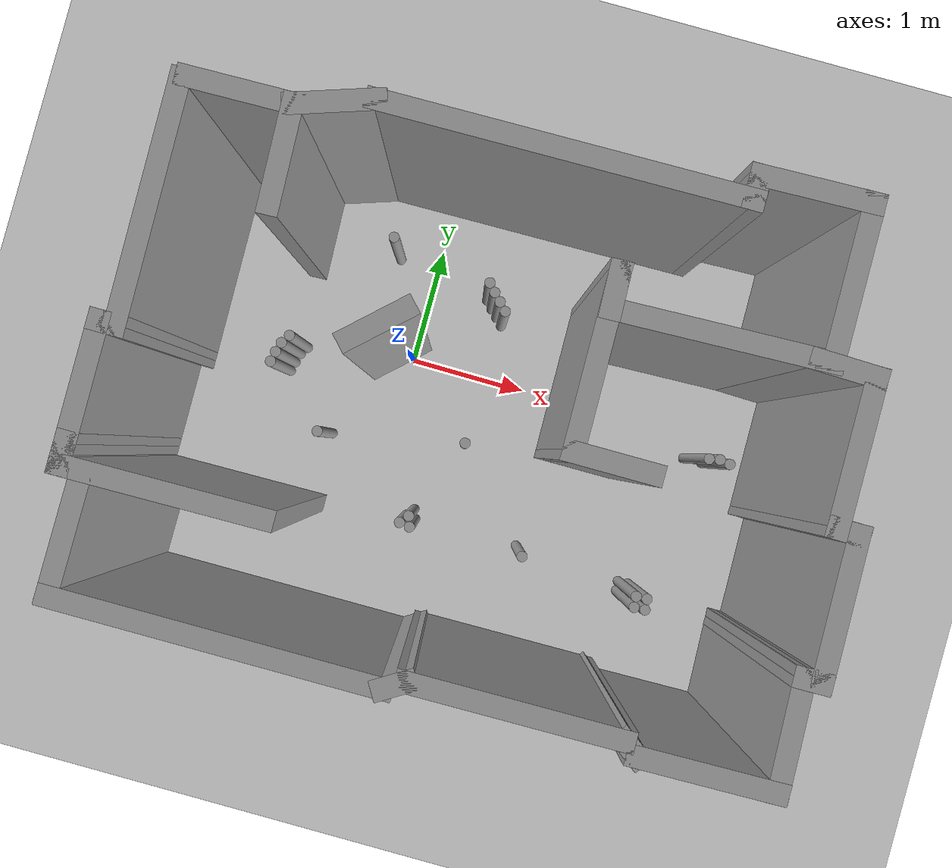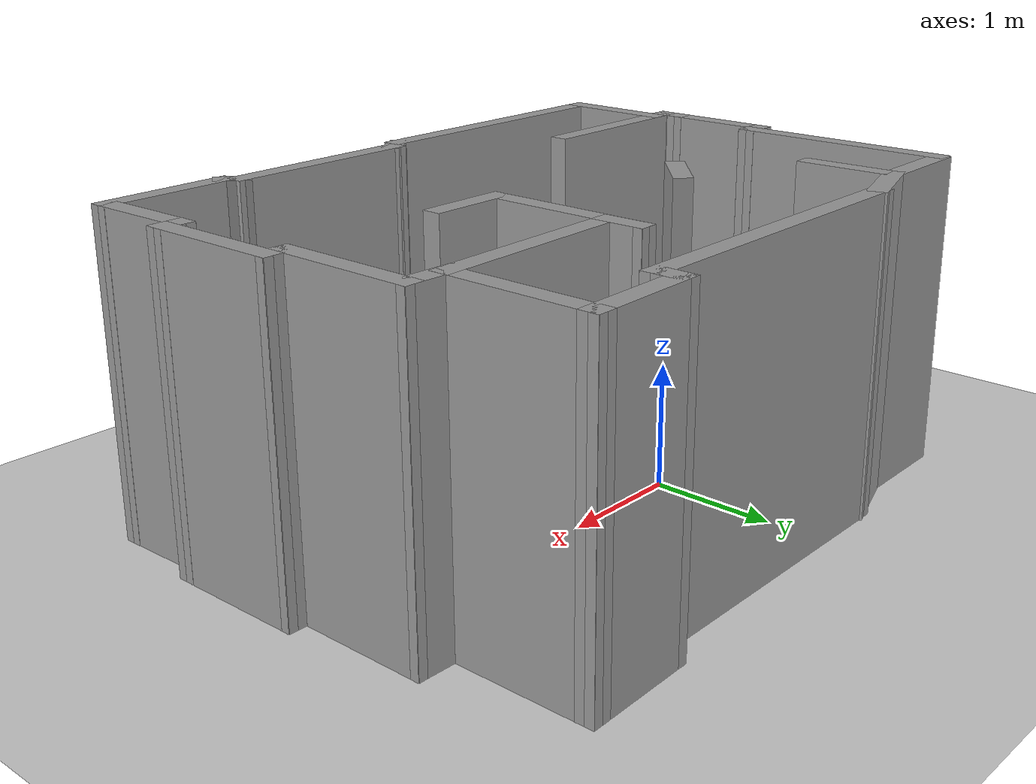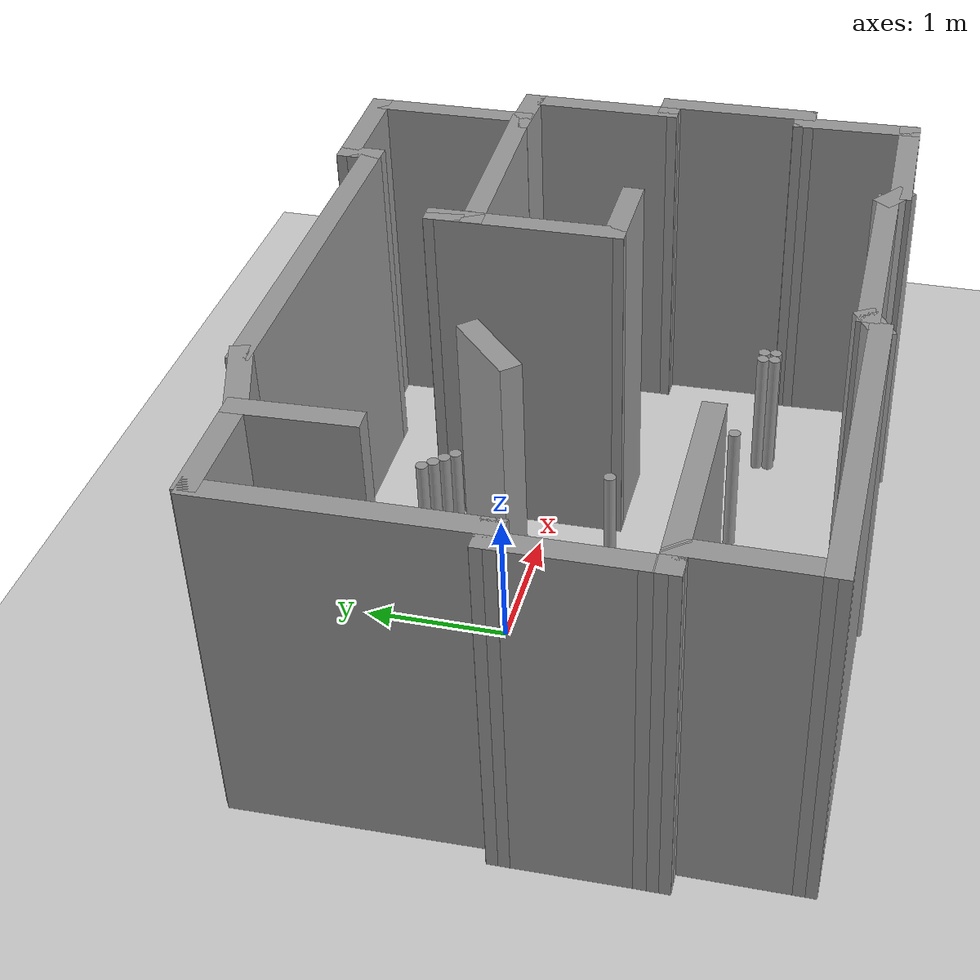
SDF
<sdf version="1.6">
 <world name="default">
  <light name="sun" type="directional">
   <pose>0 0 10 0 -0 0</pose>
   <diffuse>0.8 0.8 0.8 1</diffuse>
   <specular>0.2 0.2 0.2 1</specular>
   <attenuation>
    <range>1000</range>
    <constant>0.9</constant>
    <linear>0.01</linear>
    <quadratic>0.001</quadratic>
   </attenuation>
   <direction>-0.5 0.1 -0.9</direction>
  </light>
  <model name="ground_plane">
   <static>1</static>
   <link name="link">
    <collision name="collision">
     <geometry><plane><normal>0 0 1</normal><size>100 100</size></plane></geometry>
     <surface>
      <contact><collide_bitmask>65535</collide_bitmask></contact>
      <friction><ode><mu>100</mu><mu2>50</mu2></ode></friction>
     </surface>
    </collision>
    <visual name="visual">
     <cast_shadows>0</cast_shadows>
     <geometry><plane><normal>0 0 1</normal><size>100 100</size></plane></geometry>
     <material>
      <script><uri>file://media/materials/scripts/gazebo.material</uri><name>Gazebo/Grey</name></script>
     </material>
    </visual>
   </link>
  </model>
  <gravity>0 0 -9.8</gravity>
  <magnetic_field>6e-06 2.3e-05 -4.2e-05</magnetic_field>
  <atmosphere type="adiabatic"/>
  <physics name="default_physics" default="0" type="ode">
   <max_step_size>0.001</max_step_size>
   <real_time_factor>1</real_time_factor>
   <real_time_update_rate>1000</real_time_update_rate>
  </physics>
  <scene><ambient>0.4 0.4 0.4 1</ambient><background>0.7 0.7 0.7 1</background><shadows>1</shadows></scene>
  <spherical_coordinates>
   <surface_model>EARTH_WGS84</surface_model>
   <latitude_deg>0</latitude_deg>
   <longitude_deg>0</longitude_deg>
   <elevation>0</elevation>
   <heading_deg>0</heading_deg>
  </spherical_coordinates>
  <model name="hamster_rooom">
   <pose>0.701789 -0.345511 0 0 -0 0</pose>
   <link name="Wall_10">
    <collision name="Wall_10_Collision">
     <geometry><box><size>1.65107 0.15 2.5</size></box></geometry>
     <pose>0 0 1.25 0 -0 0</pose>
    </collision>
    <visual name="Wall_10_Visual">
     <pose>0 0 1.25 0 -0 0</pose>
     <geometry><box><size>1.65107 0.15 2.5</size></box></geometry>
     <material>
      <script><uri>file://media/materials/scripts/gazebo.material</uri><name>Gazebo/Grey</name></script>
      <ambient>1 1 1 1</ambient>
     </material>
     <meta><layer>0</layer></meta>
    </visual>
    <pose>1.37515 0.869869 0 0 -0 -3.1099</pose>
   </link>
   <link name="Wall_11">
    <collision name="Wall_11_Collision">
     <geometry><box><size>0.40522 0.15 2.5</size></box></geometry>
     <pose>0 0 1.25 0 -0 0</pose>
    </collision>
    <visual name="Wall_11_Visual">
     <pose>0 0 1.25 0 -0 0</pose>
     <geometry><box><size>0.40522 0.15 2.5</size></box></geometry>
     <material>
      <script><uri>file://media/materials/scripts/gazebo.material</uri><name>Gazebo/Grey</name></script>
      <ambient>1 1 1 1</ambient>
     </material>
     <meta><layer>0</layer></meta>
    </visual>
    <pose>0.620735 0.973628 0 0 -0 1.60468</pose>
   </link>
   <link name="Wall_12">
    <collision name="Wall_12_Collision">
     <geometry><box><size>1.37793 0.15 2.5</size></box></geometry>
     <pose>0 0 1.25 0 -0 0</pose>
    </collision>
    <visual name="Wall_12_Visual">
     <pose>0 0 1.25 0 -0 0</pose>
     <geometry><box><size>1.37793 0.15 2.5</size></box></geometry>
     <material>
      <script><uri>file://media/materials/scripts/gazebo.material</uri><name>Gazebo/Grey</name></script>
      <ambient>1 1 1 1</ambient>
     </material>
     <meta><layer>0</layer></meta>
    </visual>
    <pose>0.625058 0.487259 0 0 -0 -1.55671</pose>
   </link>
   <link name="Wall_13">
    <collision name="Wall_13_Collision">
     <geometry><box><size>0.694733 0.15 2.5</size></box></geometry>
     <pose>0 0 1.25 0 -0 0</pose>
    </collision>
    <visual name="Wall_13_Visual">
     <pose>0 0 1.25 0 -0 0</pose>
     <geometry><box><size>0.694733 0.15 2.5</size></box></geometry>
     <material>
      <script><uri>file://media/materials/scripts/gazebo.material</uri><name>Gazebo/Grey</name></script>
      <ambient>1 1 1 1</ambient>
     </material>
     <meta><layer>0</layer></meta>
    </visual>
    <pose>0.906071 -0.126646 0 0 -0 0</pose>
   </link>
   <link name="Wall_17">
    <collision name="Wall_17_Collision">
     <geometry><box><size>1.83345 0.15 2.5</size></box></geometry>
     <pose>0 0 1.25 0 -0 0</pose>
    </collision>
    <visual name="Wall_17_Visual">
     <pose>0 0 1.25 0 -0 0</pose>
     <geometry><box><size>1.83345 0.15 2.5</size></box></geometry>
     <material>
      <script><uri>file://media/materials/scripts/gazebo.material</uri><name>Gazebo/Grey</name></script>
      <ambient>1 1 1 1</ambient>
     </material>
     <meta><layer>0</layer></meta>
    </visual>
    <pose>-2.50434 0.71585 0 0 -0 1.58642</pose>
   </link>
   <link name="Wall_2">
    <collision name="Wall_2_Collision">
     <geometry><box><size>0.876426 0.15 2.5</size></box></geometry>
     <pose>0 0 1.25 0 -0 0</pose>
    </collision>
    <visual name="Wall_2_Visual">
     <pose>0 0 1.25 0 -0 0</pose>
     <geometry><box><size>0.876426 0.15 2.5</size></box></geometry>
     <material>
      <script><uri>file://media/materials/scripts/gazebo.material</uri><name>Gazebo/Grey</name></script>
      <ambient>1 1 1 1</ambient>
     </material>
     <meta><layer>0</layer></meta>
    </visual>
    <pose>-2.12022 1.58753 0 0 -0 0.017855</pose>
   </link>
   <link name="Wall_20">
    <collision name="Wall_20_Collision">
     <geometry><box><size>0.26256 0.15 2.5</size></box></geometry>
     <pose>0 0 1.25 0 -0 0</pose>
    </collision>
    <visual name="Wall_20_Visual">
     <pose>0 0 1.25 0 -0 0</pose>
     <geometry><box><size>0.26256 0.15 2.5</size></box></geometry>
     <material>
      <script><uri>file://media/materials/scripts/gazebo.material</uri><name>Gazebo/Grey</name></script>
      <ambient>1 1 1 1</ambient>
     </material>
     <meta><layer>0</layer></meta>
    </visual>
    <pose>-2.54747 -0.125575 0 0 -0 3.13811</pose>
   </link>
   <link name="Wall_21">
    <collision name="Wall_21_Collision">
     <geometry><box><size>0.973336 0.15 2.5</size></box></geometry>
     <pose>0 0 1.25 0 -0 0</pose>
    </collision>
    <visual name="Wall_21_Visual">
     <pose>0 0 1.25 0 -0 0</pose>
     <geometry><box><size>0.973336 0.15 2.5</size></box></geometry>
     <material>
      <script><uri>file://media/materials/scripts/gazebo.material</uri><name>Gazebo/Grey</name></script>
      <ambient>1 1 1 1</ambient>
     </material>
     <meta><layer>0</layer></meta>
    </visual>
    <pose>-2.59999 -0.53703 0 0 -0 -1.56166</pose>
   </link>
   <link name="Wall_22">
    <collision name="Wall_22_Collision">
     <geometry><box><size>0.307894 0.15 2.5</size></box></geometry>
     <pose>0 0 1.25 0 -0 0</pose>
    </collision>
    <visual name="Wall_22_Visual">
     <pose>0 0 1.25 0 -0 0</pose>
     <geometry><box><size>0.307894 0.15 2.5</size></box></geometry>
     <material>
      <script><uri>file://media/materials/scripts/gazebo.material</uri><name>Gazebo/Grey</name></script>
      <ambient>1 1 1 1</ambient>
     </material>
     <meta><layer>0</layer></meta>
    </visual>
    <pose>-2.59623 -1.02763 0 0 -0 -1.5708</pose>
   </link>
   <link name="Wall_23">
    <collision name="Wall_23_Collision">
     <geometry><box><size>1.53729 0.15 2.5</size></box></geometry>
     <pose>0 0 1.25 0 -0 0</pose>
    </collision>
    <visual name="Wall_23_Visual">
     <pose>0 0 1.25 0 -0 0</pose>
     <geometry><box><size>1.53729 0.15 2.5</size></box></geometry>
     <material>
      <script><uri>file://media/materials/scripts/gazebo.material</uri><name>Gazebo/Grey</name></script>
      <ambient>1 1 1 1</ambient>
     </material>
     <meta><layer>0</layer></meta>
    </visual>
    <pose>-1.90263 -1.09906 0 0 -0 0.01084</pose>
   </link>
   <link name="Wall_28">
    <collision name="Wall_28_Collision">
     <geometry><box><size>1 0.15 2.5</size></box></geometry>
     <pose>0 0 1.25 0 -0 0</pose>
    </collision>
    <visual name="Wall_28_Visual">
     <pose>0 0 1.25 0 -0 0</pose>
     <geometry><box><size>1 0.15 2.5</size></box></geometry>
     <material>
      <script><uri>file://media/materials/scripts/gazebo.material</uri><name>Gazebo/Grey</name></script>
      <ambient>1 1 1 1</ambient>
     </material>
     <meta><layer>0</layer></meta>
    </visual>
    <pose>-2.44097 -1.53232 0 0 -0 1.5708</pose>
   </link>
   <link name="Wall_3">
    <collision name="Wall_3_Collision">
     <geometry><box><size>0.83342 0.15 2.5</size></box></geometry>
     <pose>0 0 1.25 0 -0 0</pose>
    </collision>
    <visual name="Wall_3_Visual">
     <pose>0 0 1.25 0 -0 0</pose>
     <geometry><box><size>0.83342 0.15 2.5</size></box></geometry>
     <material>
      <script><uri>file://media/materials/scripts/gazebo.material</uri><name>Gazebo/Grey</name></script>
      <ambient>1 1 1 1</ambient>
     </material>
     <meta><layer>0</layer></meta>
    </visual>
    <pose>-1.7441 1.25248 0 0 -0 -1.53284</pose>
   </link>
   <link name="Wall_31">
    <collision name="Wall_31_Collision">
     <geometry><box><size>2.42847 0.15 2.5</size></box></geometry>
     <pose>0 0 1.25 0 -0 0</pose>
    </collision>
    <visual name="Wall_31_Visual">
     <pose>0 0 1.25 0 -0 0</pose>
     <geometry><box><size>2.42847 0.15 2.5</size></box></geometry>
     <material>
      <script><uri>file://media/materials/scripts/gazebo.material</uri><name>Gazebo/Grey</name></script>
      <ambient>1 1 1 1</ambient>
     </material>
     <meta><layer>0</layer></meta>
    </visual>
    <pose>-1.30174 -1.95508 0 0 -0 0.001969</pose>
   </link>
   <link name="Wall_32">
    <collision name="Wall_32_Collision">
     <geometry><box><size>0.311025 0.15 2.5</size></box></geometry>
     <pose>0 0 1.25 0 -0 0</pose>
    </collision>
    <visual name="Wall_32_Visual">
     <pose>0 0 1.25 0 -0 0</pose>
     <geometry><box><size>0.311025 0.15 2.5</size></box></geometry>
     <material>
      <script><uri>file://media/materials/scripts/gazebo.material</uri><name>Gazebo/Grey</name></script>
      <ambient>1 1 1 1</ambient>
     </material>
     <meta><layer>0</layer></meta>
    </visual>
    <pose>-0.093688 -1.91105 0 0 -0 0.545655</pose>
   </link>
   <link name="Wall_33">
    <collision name="Wall_33_Collision">
     <geometry><box><size>1.63216 0.15 2.5</size></box></geometry>
     <pose>0 0 1.25 0 -0 0</pose>
    </collision>
    <visual name="Wall_33_Visual">
     <pose>0 0 1.25 0 -0 0</pose>
     <geometry><box><size>1.63216 0.15 2.5</size></box></geometry>
     <material>
      <script><uri>file://media/materials/scripts/gazebo.material</uri><name>Gazebo/Grey</name></script>
      <ambient>1 1 1 1</ambient>
     </material>
     <meta><layer>0</layer></meta>
    </visual>
    <pose>0.716186 -1.86312 0 0 -0 0.008292</pose>
   </link>
   <link name="Wall_34">
    <collision name="Wall_34_Collision">
     <geometry><box><size>0.281744 0.15 2.5</size></box></geometry>
     <pose>0 0 1.25 0 -0 0</pose>
    </collision>
    <visual name="Wall_34_Visual">
     <pose>0 0 1.25 0 -0 0</pose>
     <geometry><box><size>0.281744 0.15 2.5</size></box></geometry>
     <material>
      <script><uri>file://media/materials/scripts/gazebo.material</uri><name>Gazebo/Grey</name></script>
      <ambient>1 1 1 1</ambient>
     </material>
     <meta><layer>0</layer></meta>
    </visual>
    <pose>1.51008 -1.8963 0 0 -0 -0.63977</pose>
   </link>
   <link name="Wall_35">
    <collision name="Wall_35_Collision">
     <geometry><box><size>1.10008 0.15 2.5</size></box></geometry>
     <pose>0 0 1.25 0 -0 0</pose>
    </collision>
    <visual name="Wall_35_Visual">
     <pose>0 0 1.25 0 -0 0</pose>
     <geometry><box><size>1.10008 0.15 2.5</size></box></geometry>
     <material>
      <script><uri>file://media/materials/scripts/gazebo.material</uri><name>Gazebo/Grey</name></script>
      <ambient>1 1 1 1</ambient>
     </material>
     <meta><layer>0</layer></meta>
    </visual>
    <pose>2.0379 -1.92763 0 0 -0 0.016839</pose>
   </link>
   <link name="Wall_36">
    <collision name="Wall_36_Collision">
     <geometry><box><size>0.918035 0.15 2.5</size></box></geometry>
     <pose>0 0 1.25 0 -0 0</pose>
    </collision>
    <visual name="Wall_36_Visual">
     <pose>0 0 1.25 0 -0 0</pose>
     <geometry><box><size>0.918035 0.15 2.5</size></box></geometry>
     <material>
      <script><uri>file://media/materials/scripts/gazebo.material</uri><name>Gazebo/Grey</name></script>
      <ambient>1 1 1 1</ambient>
     </material>
     <meta><layer>0</layer></meta>
    </visual>
    <pose>2.49866 -1.53588 0 0 -0 1.60782</pose>
   </link>
   <link name="Wall_37">
    <collision name="Wall_37_Collision">
     <geometry><box><size>0.26859 0.15 2.5</size></box></geometry>
     <pose>0 0 1.25 0 -0 0</pose>
    </collision>
    <visual name="Wall_37_Visual">
     <pose>0 0 1.25 0 -0 0</pose>
     <geometry><box><size>0.26859 0.15 2.5</size></box></geometry>
     <material>
      <script><uri>file://media/materials/scripts/gazebo.material</uri><name>Gazebo/Grey</name></script>
      <ambient>1 1 1 1</ambient>
     </material>
     <meta><layer>0</layer></meta>
    </visual>
    <pose>2.54374 -1.15165 0 0 -0 0.008049</pose>
   </link>
   <link name="Wall_38">
    <collision name="Wall_38_Collision">
     <geometry><box><size>1.14826 0.15 2.5</size></box></geometry>
     <pose>0 0 1.25 0 -0 0</pose>
    </collision>
    <visual name="Wall_38_Visual">
     <pose>0 0 1.25 0 -0 0</pose>
     <geometry><box><size>1.14826 0.15 2.5</size></box></geometry>
     <material>
      <script><uri>file://media/materials/scripts/gazebo.material</uri><name>Gazebo/Grey</name></script>
      <ambient>1 1 1 1</ambient>
     </material>
     <meta><layer>0</layer></meta>
    </visual>
    <pose>2.59369 -0.652125 0 0 -0 1.58952</pose>
   </link>
   <link name="Wall_39">
    <collision name="Wall_39_Collision">
     <geometry><box><size>0.295835 0.15 2.5</size></box></geometry>
     <pose>0 0 1.25 0 -0 0</pose>
    </collision>
    <visual name="Wall_39_Visual">
     <pose>0 0 1.25 0 -0 0</pose>
     <geometry><box><size>0.295835 0.15 2.5</size></box></geometry>
     <material>
      <script><uri>file://media/materials/scripts/gazebo.material</uri><name>Gazebo/Grey</name></script>
      <ambient>1 1 1 1</ambient>
     </material>
     <meta><layer>0</layer></meta>
    </visual>
    <pose>2.51145 -0.151214 0 0 -0 3.11596</pose>
   </link>
   <link name="Wall_40">
    <collision name="Wall_40_Collision">
     <geometry><box><size>1.17553 0.15 2.5</size></box></geometry>
     <pose>0 0 1.25 0 -0 0</pose>
    </collision>
    <visual name="Wall_40_Visual">
     <pose>0 0 1.25 0 -0 0</pose>
     <geometry><box><size>1.17553 0.15 2.5</size></box></geometry>
     <material>
      <script><uri>file://media/materials/scripts/gazebo.material</uri><name>Gazebo/Grey</name></script>
      <ambient>1 1 1 1</ambient>
     </material>
     <meta><layer>0</layer></meta>
    </visual>
    <pose>2.43334 0.363394 0 0 -0 1.58098</pose>
   </link>
   <link name="Wall_41">
    <collision name="Wall_41_Collision">
     <geometry><box><size>0.535735 0.15 2.5</size></box></geometry>
     <pose>0 0 1.25 0 -0 0</pose>
    </collision>
    <visual name="Wall_41_Visual">
     <pose>0 0 1.25 0 -0 0</pose>
     <geometry><box><size>0.535735 0.15 2.5</size></box></geometry>
     <material>
      <script><uri>file://media/materials/scripts/gazebo.material</uri><name>Gazebo/Grey</name></script>
      <ambient>1 1 1 1</ambient>
     </material>
     <meta><layer>0</layer></meta>
    </visual>
    <pose>2.23531 0.881076 0 0 -0 3.11596</pose>
   </link>
   <link name="Wall_43">
    <collision name="Wall_43_Collision">
     <geometry><box><size>0.575525 0.15 2.5</size></box></geometry>
     <pose>0 0 1.25 0 -0 0</pose>
    </collision>
    <visual name="Wall_43_Visual">
     <pose>0 0 1.25 0 -0 0</pose>
     <geometry><box><size>0.575525 0.15 2.5</size></box></geometry>
     <material>
      <script><uri>file://media/materials/scripts/gazebo.material</uri><name>Gazebo/Grey</name></script>
      <ambient>1 1 1 1</ambient>
     </material>
     <meta><layer>0</layer></meta>
    </visual>
    <pose>-0.835675 0.340256 0 0 -0 0.747578</pose>
   </link>
   <link name="Wall_5">
    <collision name="Wall_5_Collision">
     <geometry><box><size>0.700959 0.15 2.5</size></box></geometry>
     <pose>0 0 1.25 0 -0 0</pose>
    </collision>
    <visual name="Wall_5_Visual">
     <pose>0 0 1.25 0 -0 0</pose>
     <geometry><box><size>0.700959 0.15 2.5</size></box></geometry>
     <material>
      <script><uri>file://media/materials/scripts/gazebo.material</uri><name>Gazebo/Grey</name></script>
      <ambient>1 1 1 1</ambient>
     </material>
     <meta><layer>0</layer></meta>
    </visual>
    <pose>-1.49551 1.68048 0 0 -0 0.319269</pose>
   </link>
   <link name="Wall_6">
    <collision name="Wall_6_Collision">
     <geometry><box><size>2.72685 0.15 2.5</size></box></geometry>
     <pose>0 0 1.25 0 -0 0</pose>
    </collision>
    <visual name="Wall_6_Visual">
     <pose>0 0 1.25 0 -0 0</pose>
     <geometry><box><size>2.72685 0.15 2.5</size></box></geometry>
     <material>
      <script><uri>file://media/materials/scripts/gazebo.material</uri><name>Gazebo/Grey</name></script>
      <ambient>1 1 1 1</ambient>
     </material>
     <meta><layer>0</layer></meta>
    </visual>
    <pose>0.054386 1.77992 0 0 -0 0.010067</pose>
   </link>
   <link name="Wall_7">
    <collision name="Wall_7_Collision">
     <geometry><box><size>0.314796 0.15 2.5</size></box></geometry>
     <pose>0 0 1.25 0 -0 0</pose>
    </collision>
    <visual name="Wall_7_Visual">
     <pose>0 0 1.25 0 -0 0</pose>
     <geometry><box><size>0.314796 0.15 2.5</size></box></geometry>
     <material>
      <script><uri>file://media/materials/scripts/gazebo.material</uri><name>Gazebo/Grey</name></script>
      <ambient>1 1 1 1</ambient>
     </material>
     <meta><layer>0</layer></meta>
    </visual>
    <pose>1.34272 1.87503 0 0 -0 1.5708</pose>
   </link>
   <link name="Wall_8">
    <collision name="Wall_8_Collision">
     <geometry><box><size>0.919847 0.15 2.5</size></box></geometry>
     <pose>0 0 1.25 0 -0 0</pose>
    </collision>
    <visual name="Wall_8_Visual">
     <pose>0 0 1.25 0 -0 0</pose>
     <geometry><box><size>0.919847 0.15 2.5</size></box></geometry>
     <material>
      <script><uri>file://media/materials/scripts/gazebo.material</uri><name>Gazebo/Grey</name></script>
      <ambient>1 1 1 1</ambient>
     </material>
     <meta><layer>0</layer></meta>
    </visual>
    <pose>1.72749 1.96798 0 0 -0 0.028083</pose>
   </link>
   <link name="Wall_9">
    <collision name="Wall_9_Collision">
     <geometry><box><size>1.23522 0.15 2.5</size></box></geometry>
     <pose>0 0 1.25 0 -0 0</pose>
    </collision>
    <visual name="Wall_9_Visual">
     <pose>0 0 1.25 0 -0 0</pose>
     <geometry><box><size>1.23522 0.15 2.5</size></box></geometry>
     <material>
      <script><uri>file://media/materials/scripts/gazebo.material</uri><name>Gazebo/Grey</name></script>
      <ambient>1 1 1 1</ambient>
     </material>
     <meta><layer>0</layer></meta>
    </visual>
    <pose>2.11875 1.43622 0 0 -0 -1.55885</pose>
   </link>
   <static>1</static>
  </model>
  <model name="unit_cylinder_clone_clone">
   <pose>0.635707 -0.594912 0.499991 -0 -0 -0.000576</pose>
   <link name="link">
    <inertial>
     <mass>1</mass>
     <inertia><ixx>0.145833</ixx><ixy>0</ixy><ixz>0</ixz><iyy>0.145833</iyy><iyz>0</iyz><izz>0.125</izz></inertia>
    </inertial>
    <collision name="collision">
     <geometry><cylinder><radius>0.043224</radius><length>1</length></cylinder></geometry>
    </collision>
    <visual name="visual">
     <geometry><cylinder><radius>0.043224</radius><length>1</length></cylinder></geometry>
     <material>
      <script><name>Gazebo/Grey</name><uri>file://media/materials/scripts/gazebo.material</uri></script>
     </material>
    </visual>
   </link>
  </model>
  <model name="unit_cylinder_clone_clone_clone">
   <pose>1.31391 -1.34583 0.499991 0 1e-06 -0.000475</pose>
   <link name="link">
    <inertial>
     <mass>1</mass>
     <inertia><ixx>0.145833</ixx><ixy>0</ixy><ixz>0</ixz><iyy>0.145833</iyy><iyz>0</iyz><izz>0.125</izz></inertia>
    </inertial>
    <collision name="collision">
     <geometry><cylinder><radius>0.043224</radius><length>1</length></cylinder></geometry>
    </collision>
    <visual name="visual">
     <geometry><cylinder><radius>0.043224</radius><length>1</length></cylinder></geometry>
     <material>
      <script><name>Gazebo/Grey</name><uri>file://media/materials/scripts/gazebo.material</uri></script>
     </material>
    </visual>
   </link>
  </model>
  <model name="unit_cylinder_clone_clone_clone_0">
   <pose>0.355995 -1.27543 0.499999 -1e-06 1e-06 -0.000353</pose>
   <link name="link">
    <inertial>
     <mass>1</mass>
     <inertia><ixx>0.145833</ixx><ixy>0</ixy><ixz>0</ixz><iyy>0.145833</iyy><iyz>0</iyz><izz>0.125</izz></inertia>
    </inertial>
    <collision name="collision">
     <geometry><cylinder><radius>0.043224</radius><length>1</length></cylinder></geometry>
    </collision>
    <visual name="visual">
     <geometry><cylinder><radius>0.043224</radius><length>1</length></cylinder></geometry>
     <material>
      <script><name>Gazebo/Grey</name><uri>file://media/materials/scripts/gazebo.material</uri></script>
     </material>
    </visual>
   </link>
  </model>
  <model name="unit_cylinder_clone_clone_clone_1">
   <pose>0.386071 -1.35752 0.499991 -0 1e-06 -0.001453</pose>
   <link name="link">
    <inertial>
     <mass>1</mass>
     <inertia><ixx>0.145833</ixx><ixy>0</ixy><ixz>0</ixz><iyy>0.145833</iyy><iyz>0</iyz><izz>0.125</izz></inertia>
    </inertial>
    <collision name="collision">
     <geometry><cylinder><radius>0.043224</radius><length>1</length></cylinder></geometry>
    </collision>
    <visual name="visual">
     <geometry><cylinder><radius>0.043224</radius><length>1</length></cylinder></geometry>
     <material>
      <script><name>Gazebo/Grey</name><uri>file://media/materials/scripts/gazebo.material</uri></script>
     </material>
    </visual>
   </link>
  </model>
  <model name="unit_cylinder_clone_clone_clone_2">
   <pose>0.298702 -1.34304 0.499999 -1e-06 1e-06 -0.0007</pose>
   <link name="link">
    <inertial>
     <mass>1</mass>
     <inertia><ixx>0.145833</ixx><ixy>0</ixy><ixz>0</ixz><iyy>0.145833</iyy><iyz>0</iyz><izz>0.125</izz></inertia>
    </inertial>
    <collision name="collision">
     <geometry><cylinder><radius>0.043224</radius><length>1</length></cylinder></geometry>
    </collision>
    <visual name="visual">
     <geometry><cylinder><radius>0.043224</radius><length>1</length></cylinder></geometry>
     <material>
      <script><name>Gazebo/Grey</name><uri>file://media/materials/scripts/gazebo.material</uri></script>
     </material>
    </visual>
   </link>
  </model>
  <model name="unit_cylinder_clone_clone_clone_3">
   <pose>-0.529235 -0.817116 0.499999 -1e-06 1e-06 -0.000461</pose>
   <link name="link">
    <inertial>
     <mass>1</mass>
     <inertia><ixx>0.145833</ixx><ixy>0</ixy><ixz>0</ixz><iyy>0.145833</iyy><iyz>0</iyz><izz>0.125</izz></inertia>
    </inertial>
    <collision name="collision">
     <geometry><cylinder><radius>0.043224</radius><length>1</length></cylinder></geometry>
    </collision>
    <visual name="visual">
     <geometry><cylinder><radius>0.043224</radius><length>1</length></cylinder></geometry>
     <material>
      <script><name>Gazebo/Grey</name><uri>file://media/materials/scripts/gazebo.material</uri></script>
     </material>
    </visual>
   </link>
  </model>
  <model name="unit_cylinder_clone_clone_clone_4">
   <pose>-0.948653 -0.138452 0.499999 -1e-06 1e-06 -0.000347</pose>
   <link name="link">
    <inertial>
     <mass>1</mass>
     <inertia><ixx>0.145833</ixx><ixy>0</ixy><ixz>0</ixz><iyy>0.145833</iyy><iyz>0</iyz><izz>0.125</izz></inertia>
    </inertial>
    <collision name="collision">
     <geometry><cylinder><radius>0.043224</radius><length>1</length></cylinder></geometry>
    </collision>
    <visual name="visual">
     <geometry><cylinder><radius>0.043224</radius><length>1</length></cylinder></geometry>
     <material>
      <script><name>Gazebo/Grey</name><uri>file://media/materials/scripts/gazebo.material</uri></script>
     </material>
    </visual>
   </link>
  </model>
  <model name="unit_cylinder_clone_clone_clone_5">
   <pose>-0.996023 -0.210785 0.499991 0 1e-06 -0.000499</pose>
   <link name="link">
    <inertial>
     <mass>1</mass>
     <inertia><ixx>0.145833</ixx><ixy>0</ixy><ixz>0</ixz><iyy>0.145833</iyy><iyz>0</iyz><izz>0.125</izz></inertia>
    </inertial>
    <collision name="collision">
     <geometry><cylinder><radius>0.043224</radius><length>1</length></cylinder></geometry>
    </collision>
    <visual name="visual">
     <geometry><cylinder><radius>0.043224</radius><length>1</length></cylinder></geometry>
     <material>
      <script><name>Gazebo/Grey</name><uri>file://media/materials/scripts/gazebo.material</uri></script>
     </material>
    </visual>
   </link>
  </model>
  <model name="unit_cylinder_clone_clone_clone_6">
   <pose>-1.02102 -0.293539 0.499991 0 0 -0.000601</pose>
   <link name="link">
    <inertial>
     <mass>1</mass>
     <inertia><ixx>0.145833</ixx><ixy>0</ixy><ixz>0</ixz><iyy>0.145833</iyy><iyz>0</iyz><izz>0.125</izz></inertia>
    </inertial>
    <collision name="collision">
     <geometry><cylinder><radius>0.043224</radius><length>1</length></cylinder></geometry>
    </collision>
    <visual name="visual">
     <geometry><cylinder><radius>0.043224</radius><length>1</length></cylinder></geometry>
     <material>
      <script><name>Gazebo/Grey</name><uri>file://media/materials/scripts/gazebo.material</uri></script>
     </material>
    </visual>
   </link>
  </model>
  <model name="unit_cylinder_clone_clone_clone_7">
   <pose>-1.0396 -0.377972 0.499999 -1e-06 1e-06 -0.000522</pose>
   <link name="link">
    <inertial>
     <mass>1</mass>
     <inertia><ixx>0.145833</ixx><ixy>0</ixy><ixz>0</ixz><iyy>0.145833</iyy><iyz>0</iyz><izz>0.125</izz></inertia>
    </inertial>
    <collision name="collision">
     <geometry><cylinder><radius>0.043224</radius><length>1</length></cylinder></geometry>
    </collision>
    <visual name="visual">
     <geometry><cylinder><radius>0.043224</radius><length>1</length></cylinder></geometry>
     <material>
      <script><name>Gazebo/Grey</name><uri>file://media/materials/scripts/gazebo.material</uri></script>
     </material>
    </visual>
   </link>
  </model>
  <model name="unit_cylinder_clone_clone_clone_8">
   <pose>-0.352179 0.84375 0.499999 -1e-06 1e-06 -0.000499</pose>
   <link name="link">
    <inertial>
     <mass>1</mass>
     <inertia><ixx>0.145833</ixx><ixy>0</ixy><ixz>0</ixz><iyy>0.145833</iyy><iyz>0</iyz><izz>0.125</izz></inertia>
    </inertial>
    <collision name="collision">
     <geometry><cylinder><radius>0.043224</radius><length>1</length></cylinder></geometry>
    </collision>
    <visual name="visual">
     <geometry><cylinder><radius>0.043224</radius><length>1</length></cylinder></geometry>
     <material>
      <script><name>Gazebo/Grey</name><uri>file://media/materials/scripts/gazebo.material</uri></script>
     </material>
    </visual>
   </link>
  </model>
  <model name="unit_cylinder_clone_clone_clone_9">
   <pose>0.485479 0.695967 0.499991 0 1e-06 -0.00043</pose>
   <link name="link">
    <inertial>
     <mass>1</mass>
     <inertia><ixx>0.145833</ixx><ixy>0</ixy><ixz>0</ixz><iyy>0.145833</iyy><iyz>0</iyz><izz>0.125</izz></inertia>
    </inertial>
    <collision name="collision">
     <geometry><cylinder><radius>0.043224</radius><length>1</length></cylinder></geometry>
    </collision>
    <visual name="visual">
     <geometry><cylinder><radius>0.043224</radius><length>1</length></cylinder></geometry>
     <material>
      <script><name>Gazebo/Grey</name><uri>file://media/materials/scripts/gazebo.material</uri></script>
     </material>
    </visual>
   </link>
  </model>
  <model name="unit_cylinder_clone_clone_clone_10">
   <pose>0.543912 0.631439 0.499991 -0 1e-06 -0.000616</pose>
   <link name="link">
    <inertial>
     <mass>1</mass>
     <inertia><ixx>0.145833</ixx><ixy>0</ixy><ixz>0</ixz><iyy>0.145833</iyy><iyz>0</iyz><izz>0.125</izz></inertia>
    </inertial>
    <collision name="collision">
     <geometry><cylinder><radius>0.043224</radius><length>1</length></cylinder></geometry>
    </collision>
    <visual name="visual">
     <geometry><cylinder><radius>0.043224</radius><length>1</length></cylinder></geometry>
     <material>
      <script><name>Gazebo/Grey</name><uri>file://media/materials/scripts/gazebo.material</uri></script>
     </material>
    </visual>
   </link>
  </model>
  <model name="unit_cylinder_clone_clone_clone_11">
   <pose>0.604634 0.569906 0.499991 0 1e-06 -0.000528</pose>
   <link name="link">
    <inertial>
     <mass>1</mass>
     <inertia><ixx>0.145833</ixx><ixy>0</ixy><ixz>0</ixz><iyy>0.145833</iyy><iyz>0</iyz><izz>0.125</izz></inertia>
    </inertial>
    <collision name="collision">
     <geometry><cylinder><radius>0.043224</radius><length>1</length></cylinder></geometry>
    </collision>
    <visual name="visual">
     <geometry><cylinder><radius>0.043224</radius><length>1</length></cylinder></geometry>
     <material>
      <script><name>Gazebo/Grey</name><uri>file://media/materials/scripts/gazebo.material</uri></script>
     </material>
    </visual>
   </link>
  </model>
  <model name="unit_cylinder_clone_clone_clone_12">
   <pose>0.664814 0.50683 0.499999 -1e-06 1e-06 -0.000497</pose>
   <link name="link">
    <inertial>
     <mass>1</mass>
     <inertia><ixx>0.145833</ixx><ixy>0</ixy><ixz>0</ixz><iyy>0.145833</iyy><iyz>0</iyz><izz>0.125</izz></inertia>
    </inertial>
    <collision name="collision">
     <geometry><cylinder><radius>0.043224</radius><length>1</length></cylinder></geometry>
    </collision>
    <visual name="visual">
     <geometry><cylinder><radius>0.043224</radius><length>1</length></cylinder></geometry>
     <material>
      <script><name>Gazebo/Grey</name><uri>file://media/materials/scripts/gazebo.material</uri></script>
     </material>
    </visual>
   </link>
  </model>
  <model name="unit_cylinder_clone_clone_clone_13">
   <pose>2.54925 -0.19676 0.5 0 1e-06 -0.000509</pose>
   <link name="link">
    <inertial>
     <mass>1</mass>
     <inertia><ixx>0.145833</ixx><ixy>0</ixy><ixz>0</ixz><iyy>0.145833</iyy><iyz>0</iyz><izz>0.125</izz></inertia>
    </inertial>
    <collision name="collision">
     <geometry><cylinder><radius>0.043224</radius><length>1</length></cylinder></geometry>
    </collision>
    <visual name="visual">
     <geometry><cylinder><radius>0.043224</radius><length>1</length></cylinder></geometry>
     <material>
      <script><name>Gazebo/Grey</name><uri>file://media/materials/scripts/gazebo.material</uri></script>
     </material>
    </visual>
   </link>
  </model>
  <model name="unit_cylinder_clone_clone_clone_14">
   <pose>2.63409 -0.180148 0.5 0 1e-06 -0.000646</pose>
   <link name="link">
    <inertial>
     <mass>1</mass>
     <inertia><ixx>0.145833</ixx><ixy>0</ixy><ixz>0</ixz><iyy>0.145833</iyy><iyz>0</iyz><izz>0.125</izz></inertia>
    </inertial>
    <collision name="collision">
     <geometry><cylinder><radius>0.043224</radius><length>1</length></cylinder></geometry>
    </collision>
    <visual name="visual">
     <geometry><cylinder><radius>0.043224</radius><length>1</length></cylinder></geometry>
     <material>
      <script><name>Gazebo/Grey</name><uri>file://media/materials/scripts/gazebo.material</uri></script>
     </material>
    </visual>
   </link>
  </model>
  <model name="unit_cylinder_clone_clone_clone_15">
   <pose>2.71922 -0.19528 0.5 0 1e-06 -0.000608</pose>
   <link name="link">
    <inertial>
     <mass>1</mass>
     <inertia><ixx>0.145833</ixx><ixy>0</ixy><ixz>0</ixz><iyy>0.145833</iyy><iyz>0</iyz><izz>0.125</izz></inertia>
    </inertial>
    <collision name="collision">
     <geometry><cylinder><radius>0.043224</radius><length>1</length></cylinder></geometry>
    </collision>
    <visual name="visual">
     <geometry><cylinder><radius>0.043224</radius><length>1</length></cylinder></geometry>
     <material>
      <script><name>Gazebo/Grey</name><uri>file://media/materials/scripts/gazebo.material</uri></script>
     </material>
    </visual>
   </link>
  </model>
  <model name="unit_cylinder_clone_clone_clone_16">
   <pose>2.28294 -1.49512 0.5 0 -1e-06 0.000756</pose>
   <link name="link">
    <inertial>
     <mass>1</mass>
     <inertia><ixx>0.145833</ixx><ixy>0</ixy><ixz>0</ixz><iyy>0.145833</iyy><iyz>0</iyz><izz>0.125</izz></inertia>
    </inertial>
    <collision name="collision">
     <geometry><cylinder><radius>0.043224</radius><length>1</length></cylinder></geometry>
    </collision>
    <visual name="visual">
     <geometry><cylinder><radius>0.043224</radius><length>1</length></cylinder></geometry>
     <material>
      <script><name>Gazebo/Grey</name><uri>file://media/materials/scripts/gazebo.material</uri></script>
     </material>
    </visual>
   </link>
  </model>
  <model name="unit_cylinder_clone_clone_clone_17">
   <pose>2.3712 -1.49417 0.499995 0 1e-06 -0.00299</pose>
   <link name="link">
    <inertial>
     <mass>1</mass>
     <inertia><ixx>0.145833</ixx><ixy>0</ixy><ixz>0</ixz><iyy>0.145833</iyy><iyz>0</iyz><izz>0.125</izz></inertia>
    </inertial>
    <collision name="collision">
     <geometry><cylinder><radius>0.043224</radius><length>1</length></cylinder></geometry>
    </collision>
    <visual name="visual">
     <geometry><cylinder><radius>0.043224</radius><length>1</length></cylinder></geometry>
     <material>
      <script><name>Gazebo/Grey</name><uri>file://media/materials/scripts/gazebo.material</uri></script>
     </material>
    </visual>
   </link>
  </model>
  <model name="unit_cylinder_clone_clone_clone_18">
   <pose>2.36456 -1.40706 0.499999 -1e-06 1e-06 -0.004101</pose>
   <link name="link">
    <inertial>
     <mass>1</mass>
     <inertia><ixx>0.145833</ixx><ixy>0</ixy><ixz>0</ixz><iyy>0.145833</iyy><iyz>0</iyz><izz>0.125</izz></inertia>
    </inertial>
    <collision name="collision">
     <geometry><cylinder><radius>0.043224</radius><length>1</length></cylinder></geometry>
    </collision>
    <visual name="visual">
     <geometry><cylinder><radius>0.043224</radius><length>1</length></cylinder></geometry>
     <material>
      <script><name>Gazebo/Grey</name><uri>file://media/materials/scripts/gazebo.material</uri></script>
     </material>
    </visual>
   </link>
  </model>
  <model name="unit_cylinder_clone_clone_clone_19">
   <pose>2.27663 -1.4089 0.5 0 0 -0.000922</pose>
   <link name="link">
    <inertial>
     <mass>1</mass>
     <inertia><ixx>0.145833</ixx><ixy>0</ixy><ixz>0</ixz><iyy>0.145833</iyy><iyz>0</iyz><izz>0.125</izz></inertia>
    </inertial>
    <collision name="collision">
     <geometry><cylinder><radius>0.043224</radius><length>1</length></cylinder></geometry>
    </collision>
    <visual name="visual">
     <geometry><cylinder><radius>0.043224</radius><length>1</length></cylinder></geometry>
     <material>
      <script><name>Gazebo/Grey</name><uri>file://media/materials/scripts/gazebo.material</uri></script>
     </material>
    </visual>
   </link>
  </model>
  <model name="obstacles_model"><static>0</static></model>
  <model name="obstacles_model_0"><static>0</static><pose>-6.77243 1.34829 0 0 -0 0</pose></model>
 </world>
</sdf>
